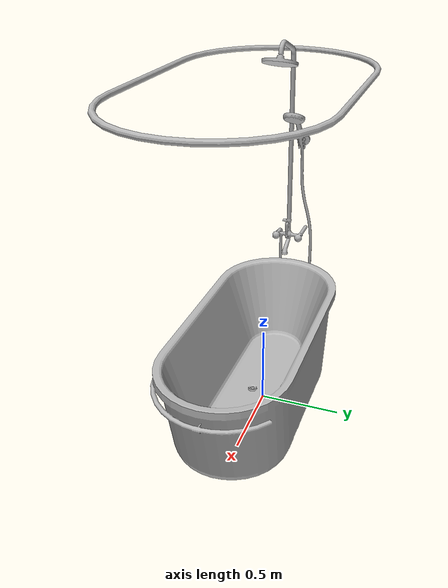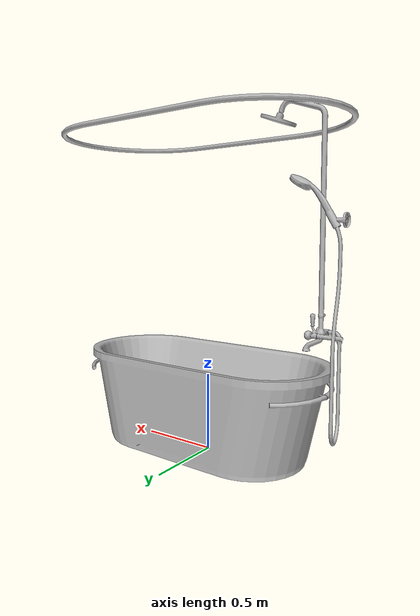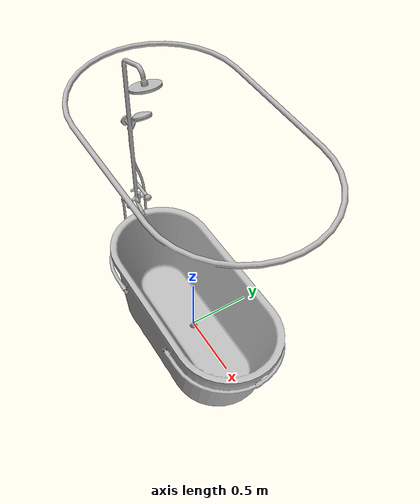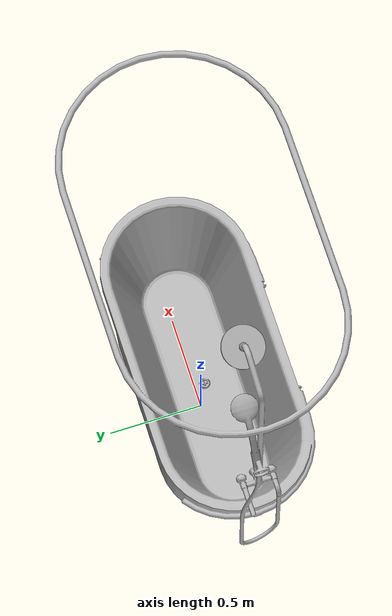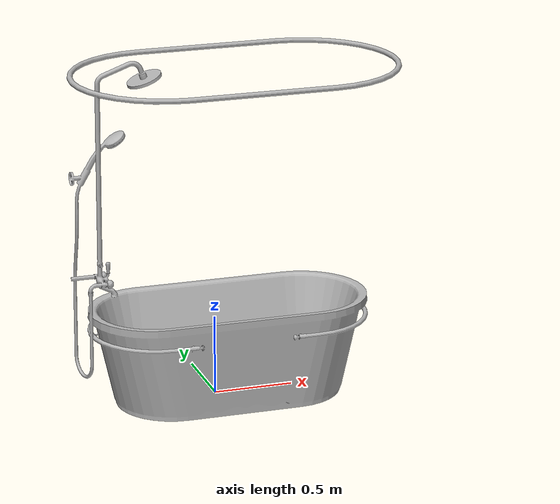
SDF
<?xml version='1.0'?>
<sdf version='1.6'>
  <model name='04_ShowerAndBath'>
    <link name='body'>
	  <inertial>
        <mass>70</mass>
        <pose frame=''>0 0 0 0 0 0</pose>
        <inertia>
          <ixx>34.856756</ixx>
          <ixy>0</ixy>
          <ixz>0</ixz>
          <iyy>41.226756</iyy>
          <iyz>0</iyz>
          <izz>20.231166</izz>
        </inertia>
      </inertial>
      <pose frame=''>0 0 0 0 -0 0</pose>
      <self_collide>0</self_collide>
      <kinematic>0</kinematic>
      <gravity>1</gravity>
      <visual name='visual'>
        <geometry>
          <mesh>
            <uri>model://ShowerAndBath_182f5836455e_lod0/meshes/visual_LowPoly_04_ShowerAndBath.dae</uri>
          </mesh>
        </geometry>
		<meta> <layer> 1 </layer></meta>
      </visual>
      <collision name='collision_0'>
        <laser_retro>0</laser_retro>
        <max_contacts>10</max_contacts>
        <pose frame=''>0 0 0 0 -0 0</pose>
        <geometry>
          <mesh>
            <uri>model://ShowerAndBath_182f5836455e_lod0/meshes/collision_04_ShowerAndBath.dae</uri>
            <scale>1 1 1</scale>
          </mesh>
        </geometry>
		<surface>
          <friction>
            <ode>
              <mu>0.6</mu>
              <mu2>0.6</mu2>
              <fdir1>0 0 0</fdir1>
              <slip1>0</slip1>
              <slip2>0</slip2>
            </ode>
            <torsional>
              <coefficient>1</coefficient>
              <patch_radius>0</patch_radius>
              <surface_radius>0</surface_radius>
              <use_patch_radius>1</use_patch_radius>
              <ode>
                <slip>0</slip>
              </ode>
            </torsional>
          </friction>
        </surface>
      </collision>
    </link>
    <static>true</static>
  </model>
</sdf>
